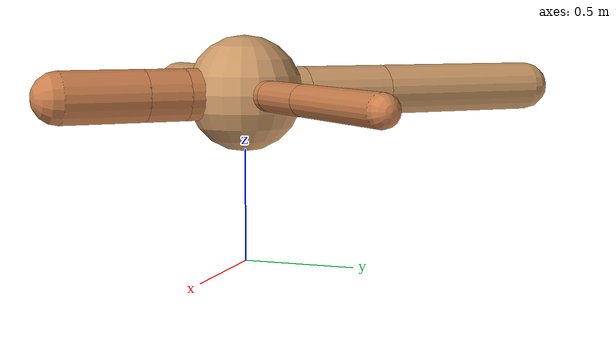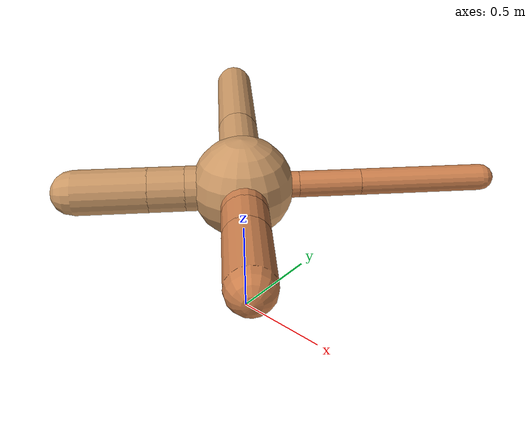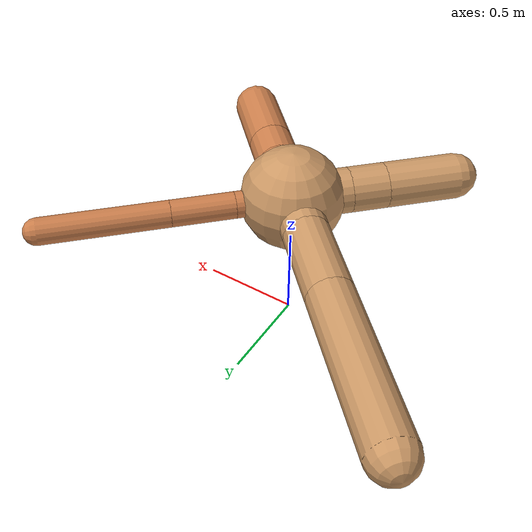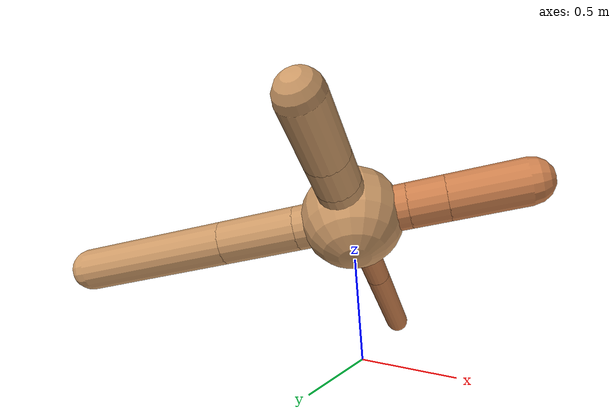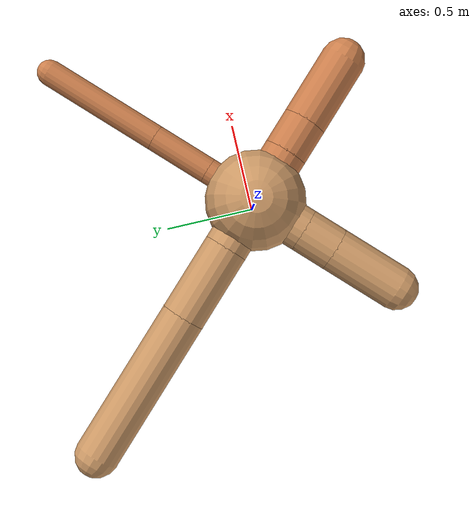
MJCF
<?xml version="1.0" ?>
<mujoco model="ant">

	<compiler angle="degree" coordinate="local" inertiafromgeom="true"/>

	<option integrator="RK4" timestep="0.01"/>

	<custom>

		<numeric data="0.0 0.0 0.55 1.0 0.0 0.0 0.0 0.0 1.0 0.0 -1.0 0.0 -1.0 0.0 1.0" name="init_qpos"/>

	</custom>

	<default>

		<joint armature="1" damping="1" limited="true"/>

		<geom conaffinity="0" condim="3" density="5.0" friction="1.5 0.1 0.1" margin="0.01" rgba="0.8 0.6 0.4 1"/>

	</default>

	<worldbody>

		<body name="torso" pos="0 0 0.75">

			<geom name="torso_geom" pos="0 0 0" size="0.2565168377550799" type="sphere"/>

			<!--joint armature="0" damping="0" limited="false" margin="0.01" name="root" pos="0 0 0" type="free"/-->

			<body name="front_left_leg" pos="0 0 0">

				<geom fromto="0 0 0 0.2 0.2 0" name="aux_1_geom" size="0.0662372903512501" type="capsule" rgba=".8 .5 .3 1"/>

				<body name="aux_1" pos="0.2 0.2 0">

					<joint axis="0 0 1" name="hip_1" pos="0.0 0.0 0.0" range="-40 40" type="hinge"/>

					<geom fromto="0 0 0 0.22063639539281313 0.22063639539281313 0" name="left_leg_geom" size="0.0662372903512501" type="capsule" rgba=".8 .5 .3 1"/>

					<body pos="0.22063639539281313 0.22063639539281313 0" name="front_left_foot">

						<joint axis="-1 1 0" name="ankle_1" pos="0.0 0.0 0.0" range="30 100" type="hinge"/>

						<geom fromto="0 0 0 0.44127279078562626 0.44127279078562626 0" name="left_ankle_geom" size="0.0662372903512501" type="capsule" rgba=".8 .5 .3 1"/>

					</body>

				</body>

			</body>

			<body name="front_right_leg" pos="0 0 0">

				<geom fromto="0 0 0 -0.2 0.2 0" name="aux_2_geom" size="0.1143546829126762" type="capsule"/>

				<body name="aux_2" pos="-0.2 0.2 0">

					<joint axis="0 0 1" name="hip_2" pos="0.0 0.0 0.0" range="-40 40" type="hinge"/>

					<geom fromto="0 0 0 -0.287943209253131 0.287943209253131 0" name="right_leg_geom" size="0.1143546829126762" type="capsule"/>

					<body pos="-0.287943209253131 0.287943209253131 0" name="front_right_foot">

						<joint axis="1 1 0" name="ankle_2" pos="0.0 0.0 0.0" range="-100 -30" type="hinge"/>

						<geom fromto="0 0 0 -0.575886418506262 0.575886418506262 0" name="right_ankle_geom" size="0.1143546829126762" type="capsule"/>

					</body>

				</body>

			</body>

			<body name="left_back_leg" pos="0 0 0">

				<geom fromto="0 0 0 -0.2 -0.2 0" name="aux_3_geom" size="0.1134670862384101" type="capsule"/>

				<body name="aux_3" pos="-0.2 -0.2 0">

					<joint axis="0 0 1" name="hip_3" pos="0.0 0.0 0.0" range="-40 40" type="hinge"/>

					<geom fromto="0 0 0 -0.12925565205073827 -0.12925565205073827 0" name="back_leg_geom" size="0.1134670862384101" type="capsule"/>

					<body pos="-0.12925565205073827 -0.12925565205073827 0" name="left_back_foot">

						<joint axis="-1 1 0" name="ankle_3" pos="0.0 0.0 0.0" range="-100 -30" type="hinge"/>

						<geom fromto="0 0 0 -0.25851130410147655 -0.25851130410147655 0" name="third_ankle_geom" size="0.1134670862384101" type="capsule"/>

					</body>

				</body>

			</body>

			<body name="right_back_leg" pos="0 0 0">

				<geom fromto="0 0 0 0.2 -0.2 0" name="aux_4_geom" size="0.11390069041725419" type="capsule" rgba=".8 .5 .3 1"/>

				<body name="aux_4" pos="0.2 -0.2 0">

					<joint axis="0 0 1" name="hip_4" pos="0.0 0.0 0.0" range="-40 40" type="hinge"/>

					<geom fromto="0 0 0 0.12931590022235603 -0.12931590022235603 0" name="rightback_leg_geom" size="0.11390069041725419" type="capsule" rgba=".8 .5 .3 1"/>

					<body pos="0.12931590022235603 -0.12931590022235603 0" name="right_back_foot">

						<joint axis="1 1 0" name="ankle_4" pos="0.0 0.0 0.0" range="30 100" type="hinge"/>

						<geom fromto="0 0 0 0.25863180044471207 -0.25863180044471207 0" name="fourth_ankle_geom" size="0.11390069041725419" type="capsule" rgba=".8 .5 .3 1"/>

					</body>

				</body>

			</body>

		</body>

	</worldbody>

	<actuator>

		<motor ctrllimited="true" ctrlrange="-1.0 1.0" joint="hip_4" gear="150"/>

		<motor ctrllimited="true" ctrlrange="-1.0 1.0" joint="ankle_4" gear="150"/>

		<motor ctrllimited="true" ctrlrange="-1.0 1.0" joint="hip_1" gear="150"/>

		<motor ctrllimited="true" ctrlrange="-1.0 1.0" joint="ankle_1" gear="150"/>

		<motor ctrllimited="true" ctrlrange="-1.0 1.0" joint="hip_2" gear="150"/>

		<motor ctrllimited="true" ctrlrange="-1.0 1.0" joint="ankle_2" gear="150"/>

		<motor ctrllimited="true" ctrlrange="-1.0 1.0" joint="hip_3" gear="150"/>

		<motor ctrllimited="true" ctrlrange="-1.0 1.0" joint="ankle_3" gear="150"/>

	</actuator>

</mujoco>
